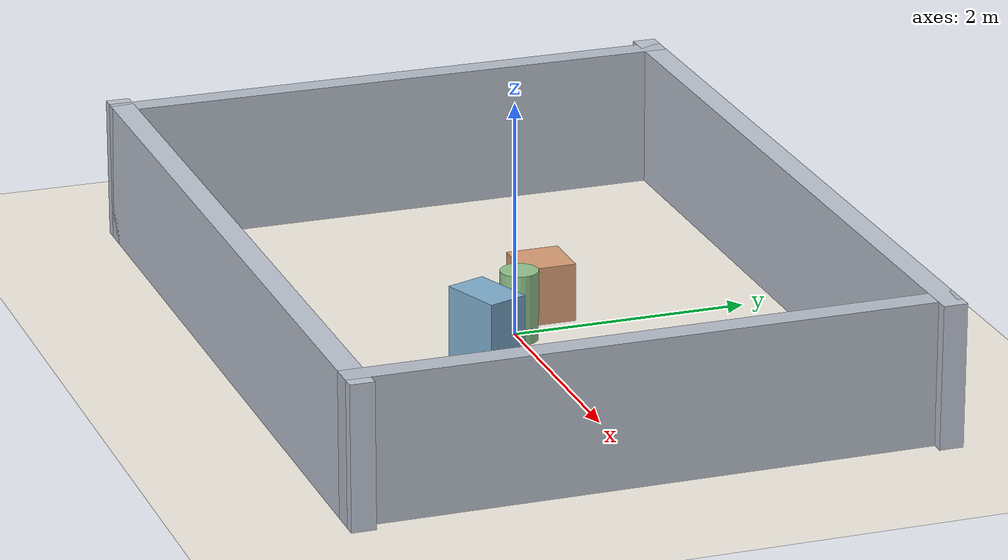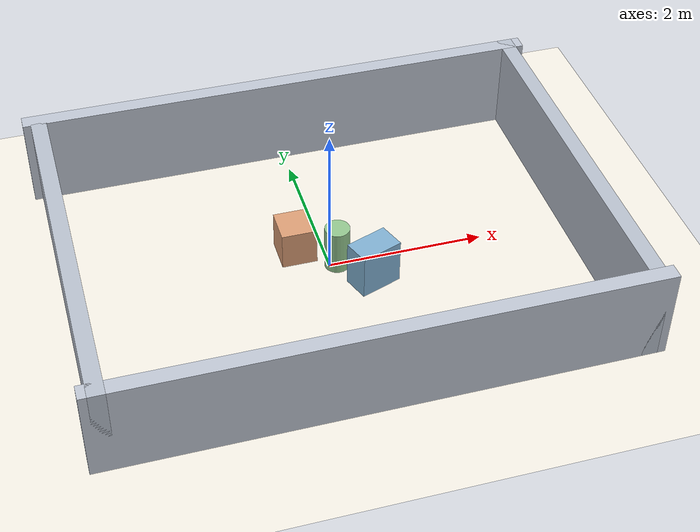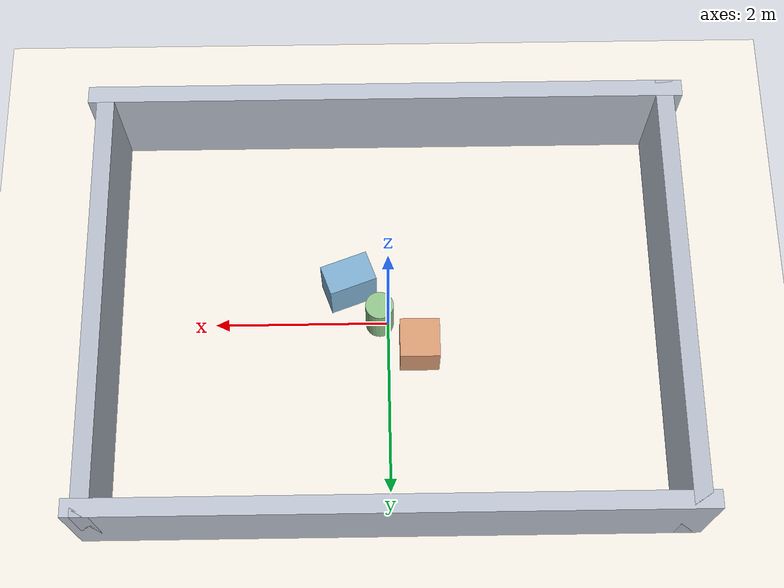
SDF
<!-- 文件: src/sam_bot_nav2_gz/world/demo_simple_room.sdf | 负责人: 陆华均 | FR-A | PPT: 第21-22页 场景生成 -->
<!-- 【AI-PROMPT】 简化版室内测试房间 SDF：矩形围墙、少量障碍，比 pillar room 简单，方便 batch 测试。... -->
<sdf version="1.8">
  <world name="demo_simple_room">
    <gui>
      <camera name="gzclient_camera">
        <pose>-1.5 0 12 0 1.45 0</pose>
      </camera>
    </gui>

    <physics name="1ms" type="ignored">
      <max_step_size>0.001</max_step_size>
      <real_time_factor>1</real_time_factor>
      <real_time_update_rate>1000</real_time_update_rate>
    </physics>

    <plugin
      name="ignition::gazebo::systems::Physics"
      filename="ignition-gazebo-physics-system"
    />
    <plugin
      name="ignition::gazebo::systems::UserCommands"
      filename="ignition-gazebo-user-commands-system"
    />
    <plugin
      name="ignition::gazebo::systems::SceneBroadcaster"
      filename="ignition-gazebo-scene-broadcaster-system"
    />
    <plugin
      filename="ignition-gazebo-sensors-system"
      name="ignition::gazebo::systems::Sensors"
    >
      <render_engine>ogre2</render_engine>
    </plugin>

    <scene>
      <ambient>0.9 0.9 0.9 1</ambient>
      <background>0.85 0.88 0.92 1</background>
      <grid>false</grid>
    </scene>

    <light type="directional" name="sun">
      <cast_shadows>true</cast_shadows>
      <pose>0 0 10 0 0 0</pose>
      <diffuse>0.8 0.8 0.8 1</diffuse>
      <specular>0.2 0.2 0.2 1</specular>
      <attenuation>
        <range>1000</range>
        <constant>0.9</constant>
        <linear>0.01</linear>
        <quadratic>0.001</quadratic>
      </attenuation>
      <direction>-0.4 0.2 -0.9</direction>
    </light>

    <model name="ground_plane">
      <static>true</static>
      <link name="link">
        <collision name="collision">
          <geometry>
            <plane>
              <normal>0 0 1</normal>
              <size>40 40</size>
            </plane>
          </geometry>
        </collision>
        <visual name="visual">
          <geometry>
            <plane>
              <normal>0 0 1</normal>
              <size>40 40</size>
            </plane>
          </geometry>
          <material>
            <ambient>0.96 0.94 0.9 1</ambient>
            <diffuse>0.96 0.94 0.9 1</diffuse>
            <specular>1 1 1 0</specular>
          </material>
        </visual>
      </link>
    </model>

    <model name="sky_cam">
      <static>true</static>
      <link name="camera_link">
        <pose>0 0 12 1.57 1.57 0</pose>
        <sensor name="sky_cam" type="camera">
          <camera>
            <horizontal_fov>1.047</horizontal_fov>
            <image>
              <width>1024</width>
              <height>768</height>
            </image>
            <clip>
              <near>0.1</near>
              <far>100</far>
            </clip>
          </camera>
          <always_on>1</always_on>
          <update_rate>1</update_rate>
          <visualize>true</visualize>
          <topic>sky_cam</topic>
        </sensor>
      </link>
    </model>

    <model name="north_wall">
      <static>true</static>
      <pose>0 2.4 0.6 0 0 0</pose>
      <link name="link">
        <collision name="collision">
          <geometry>
            <box><size>6.8 0.2 1.2</size></box>
          </geometry>
        </collision>
        <visual name="visual">
          <geometry>
            <box><size>6.8 0.2 1.2</size></box>
          </geometry>
          <material><ambient>0.75 0.78 0.83 1</ambient></material>
        </visual>
      </link>
    </model>

    <model name="south_wall">
      <static>true</static>
      <pose>0 -2.4 0.6 0 0 0</pose>
      <link name="link">
        <collision name="collision">
          <geometry>
            <box><size>6.8 0.2 1.2</size></box>
          </geometry>
        </collision>
        <visual name="visual">
          <geometry>
            <box><size>6.8 0.2 1.2</size></box>
          </geometry>
          <material><ambient>0.75 0.78 0.83 1</ambient></material>
        </visual>
      </link>
    </model>

    <model name="west_wall">
      <static>true</static>
      <pose>-3.2 0 0.6 0 0 0</pose>
      <link name="link">
        <collision name="collision">
          <geometry>
            <box><size>0.2 5.0 1.2</size></box>
          </geometry>
        </collision>
        <visual name="visual">
          <geometry>
            <box><size>0.2 5.0 1.2</size></box>
          </geometry>
          <material><ambient>0.72 0.75 0.8 1</ambient></material>
        </visual>
      </link>
    </model>

    <model name="east_wall">
      <static>true</static>
      <pose>3.2 0 0.6 0 0 0</pose>
      <link name="link">
        <collision name="collision">
          <geometry>
            <box><size>0.2 5.0 1.2</size></box>
          </geometry>
        </collision>
        <visual name="visual">
          <geometry>
            <box><size>0.2 5.0 1.2</size></box>
          </geometry>
          <material><ambient>0.72 0.75 0.8 1</ambient></material>
        </visual>
      </link>
    </model>

    <model name="center_box_a">
      <static>true</static>
      <pose>-0.35 0.35 0.25 0 0 0</pose>
      <link name="link">
        <collision name="collision">
          <geometry>
            <box><size>0.45 0.45 0.5</size></box>
          </geometry>
        </collision>
        <visual name="visual">
          <geometry>
            <box><size>0.45 0.45 0.5</size></box>
          </geometry>
          <material><ambient>0.86 0.62 0.46 1</ambient></material>
        </visual>
      </link>
    </model>

    <model name="center_box_b">
      <static>true</static>
      <pose>0.45 -0.4 0.3 0 0 0.35</pose>
      <link name="link">
        <collision name="collision">
          <geometry>
            <box><size>0.55 0.35 0.6</size></box>
          </geometry>
        </collision>
        <visual name="visual">
          <geometry>
            <box><size>0.55 0.35 0.6</size></box>
          </geometry>
          <material><ambient>0.5 0.69 0.82 1</ambient></material>
        </visual>
      </link>
    </model>

    <model name="center_marker_cylinder">
      <static>true</static>
      <pose>0.1 0.0 0.3 0 0 0</pose>
      <link name="link">
        <collision name="collision">
          <geometry>
            <cylinder><radius>0.16</radius><length>0.6</length></cylinder>
          </geometry>
        </collision>
        <visual name="visual">
          <geometry>
            <cylinder><radius>0.16</radius><length>0.6</length></cylinder>
          </geometry>
          <material><ambient>0.58 0.78 0.56 1</ambient></material>
        </visual>
      </link>
    </model>

  </world>
</sdf>
